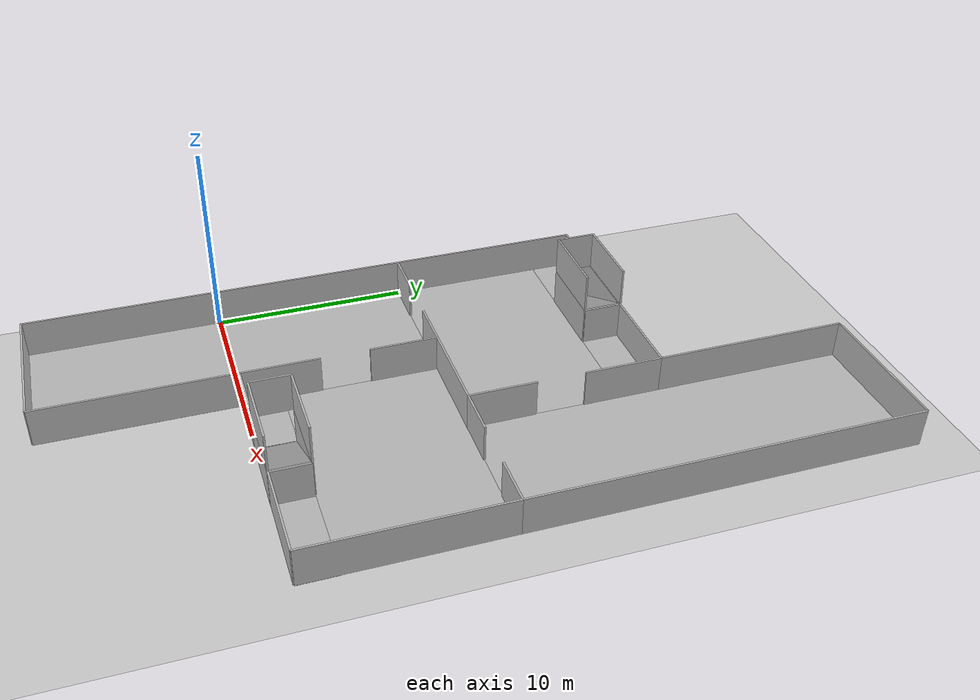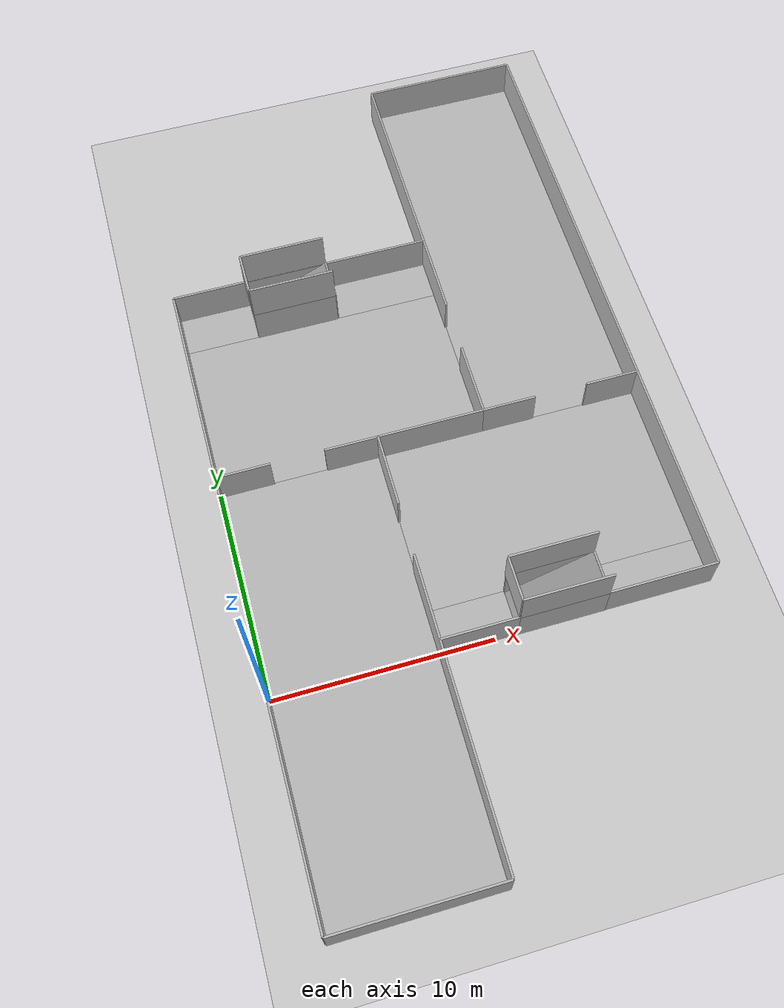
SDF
<sdf version="1.7">
 <world name="default">
  <light name="sun" type="directional">
   <pose>0 0 10 0 -0 0</pose>
   <diffuse>0.8 0.8 0.8 1</diffuse>
   <specular>0.2 0.2 0.2 1</specular>
   <attenuation>
    <range>1000</range>
    <constant>0.9</constant>
    <linear>0.01</linear>
    <quadratic>0.001</quadratic>
   </attenuation>
   <direction>-0.5 0.1 -0.9</direction>
   <spot><inner_angle>0</inner_angle><outer_angle>0</outer_angle><falloff>0</falloff></spot>
  </light>
  <model name="ground_plane">
   <static>1</static>
   <link name="link">
    <collision name="collision">
     <geometry><plane><normal>0 0 1</normal><size>100 100</size></plane></geometry>
     <surface><friction><ode><mu>100</mu><mu2>50</mu2></ode></friction></surface>
    </collision>
    <visual name="visual">
     <cast_shadows>0</cast_shadows>
     <geometry><plane><normal>0 0 1</normal><size>100 100</size></plane></geometry>
     <material>
      <script><uri>file://media/materials/scripts/gazebo.material</uri><name>Gazebo/Grey</name></script>
     </material>
    </visual>
   </link>
  </model>
  <gravity>0 0 -9.8</gravity>
  <magnetic_field>6e-06 2.3e-05 -4.2e-05</magnetic_field>
  <atmosphere type="adiabatic"/>
  <physics type="ode">
   <max_step_size>0.001</max_step_size>
   <real_time_factor>1</real_time_factor>
   <real_time_update_rate>1000</real_time_update_rate>
  </physics>
  <scene><ambient>0.4 0.4 0.4 1</ambient><background>0.7 0.7 0.7 1</background><shadows>1</shadows></scene>
  <spherical_coordinates>
   <surface_model>EARTH_WGS84</surface_model>
   <latitude_deg>0</latitude_deg>
   <longitude_deg>0</longitude_deg>
   <elevation>0</elevation>
   <heading_deg>0</heading_deg>
  </spherical_coordinates>
  <model name="multi_room_floor">
   <static>1</static>
   <link name="lr_room">
    <visual name="box_visual">
     <pose>3.75 0 0 0 -0 0</pose>
     <geometry>
      <mesh>
       <uri>model://gazebo_worlds_cdt/models/multi_room_floor/meshes/wall_box.dae</uri>
       <scale>7.5 20 0.1</scale>
      </mesh>
     </geometry>
    </visual>
    <collision name="box_collision">
     <pose>3.75 0 0 0 -0 0</pose>
     <geometry><box><size>7.5 20 0.1</size></box></geometry>
    </collision>
   </link>
   <link name="ul_room">
    <visual name="box_visual">
     <pose>16.25 20 0 0 -0 0</pose>
     <geometry>
      <mesh>
       <uri>model://gazebo_worlds_cdt/models/multi_room_floor/meshes/wall_box.dae</uri>
       <scale>7.5 20 0.1</scale>
      </mesh>
     </geometry>
    </visual>
    <collision name="box_collision">
     <pose>16.25 20 0 0 -0 0</pose>
     <geometry><box><size>7.5 20 0.1</size></box></geometry>
    </collision>
   </link>
   <link name="ur_room">
    <visual name="box_visual">
     <pose>13.75 6 0 0 -0 0</pose>
     <geometry>
      <mesh>
       <uri>model://gazebo_worlds_cdt/models/multi_room_floor/meshes/wall_box.dae</uri>
       <scale>12.5 8 0.1</scale>
      </mesh>
     </geometry>
    </visual>
    <collision name="box_collision">
     <pose>13.75 6 0 0 -0 0</pose>
     <geometry><box><size>12.5 8 0.1</size></box></geometry>
    </collision>
   </link>
   <link name="lr_slot_lower">
    <visual name="box_visual">
     <pose>9.25 1 0 0 -0 0</pose>
     <geometry>
      <mesh>
       <uri>model://gazebo_worlds_cdt/models/multi_room_floor/meshes/wall_box.dae</uri>
       <scale>3.55 2 0.1</scale>
      </mesh>
     </geometry>
    </visual>
    <collision name="box_collision">
     <pose>9.25 1 0 0 -0 0</pose>
     <geometry><box><size>3.55 2 0.1</size></box></geometry>
    </collision>
   </link>
   <link name="lr_slot_upper">
    <visual name="box_visual">
     <pose>17.5 1 0 0 -0 0</pose>
     <geometry>
      <mesh>
       <uri>model://gazebo_worlds_cdt/models/multi_room_floor/meshes/wall_box.dae</uri>
       <scale>5.05 2 0.1</scale>
      </mesh>
     </geometry>
    </visual>
    <collision name="box_collision">
     <pose>17.5 1 0 0 -0 0</pose>
     <geometry><box><size>5.05 2 0.1</size></box></geometry>
    </collision>
   </link>
   <link name="ll_room">
    <visual name="box_visual">
     <pose>6.25 14 0 0 -0 0</pose>
     <geometry>
      <mesh>
       <uri>model://gazebo_worlds_cdt/models/multi_room_floor/meshes/wall_box.dae</uri>
       <scale>12.5 8 0.1</scale>
      </mesh>
     </geometry>
    </visual>
    <collision name="box_collision">
     <pose>6.25 14 0 0 -0 0</pose>
     <geometry><box><size>12.25 8 0.1</size></box></geometry>
    </collision>
   </link>
   <link name="ur_slot_lower">
    <visual name="box_visual">
     <pose>1.75 19 0 0 -0 0</pose>
     <geometry>
      <mesh>
       <uri>model://gazebo_worlds_cdt/models/multi_room_floor/meshes/wall_box.dae</uri>
       <scale>3.55 2 0.1</scale>
      </mesh>
     </geometry>
    </visual>
    <collision name="box_collision">
     <pose>1.75 19 0 0 -0 0</pose>
     <geometry><box><size>3.55 2 0.1</size></box></geometry>
    </collision>
   </link>
   <link name="ur_slot_upper">
    <visual name="box_visual">
     <pose>10 19 0 0 -0 0</pose>
     <geometry>
      <mesh>
       <uri>model://gazebo_worlds_cdt/models/multi_room_floor/meshes/wall_box.dae</uri>
       <scale>5.05 2 0.1</scale>
      </mesh>
     </geometry>
    </visual>
    <collision name="box_collision">
     <pose>10 19 0 0 -0 0</pose>
     <geometry><box><size>5.05 2 0.1</size></box></geometry>
    </collision>
   </link>
  </model>
  <model name="multi_room">
   <static>1</static>
   <link name="right">
    <visual name="box_visual">
     <pose>3.75 -10 1 0 -0 0</pose>
     <geometry>
      <mesh>
       <uri>model://gazebo_worlds_cdt/models/multi_room/meshes/wall_box.dae</uri>
       <scale>7.5 0.1 2</scale>
      </mesh>
     </geometry>
    </visual>
    <collision name="box_collision">
     <pose>3.75 -10 1 0 -0 0</pose>
     <geometry><box><size>7.5 0.1 2</size></box></geometry>
    </collision>
   </link>
   <link name="left1">
    <visual name="box_visual">
     <pose>1.25 10 1 0 -0 0</pose>
     <geometry>
      <mesh>
       <uri>model://gazebo_worlds_cdt/models/multi_room/meshes/wall_box.dae</uri>
       <scale>2.5 0.1 2</scale>
      </mesh>
     </geometry>
    </visual>
    <collision name="box_collision">
     <pose>1.25 10 1 0 -0 0</pose>
     <geometry><box><size>2.5 0.1 2</size></box></geometry>
    </collision>
   </link>
   <link name="left2">
    <visual name="box_visual">
     <pose>6.25 10 1 0 -0 0</pose>
     <geometry>
      <mesh>
       <uri>model://gazebo_worlds_cdt/models/multi_room/meshes/wall_box.dae</uri>
       <scale>2.5 0.1 2</scale>
      </mesh>
     </geometry>
    </visual>
    <collision name="box_collision">
     <pose>6.25 10 1 0 -0 0</pose>
     <geometry><box><size>2.5 0.1 2</size></box></geometry>
    </collision>
   </link>
   <link name="bot1">
    <visual name="box_visual">
     <pose>0 0 1 0 -0 0</pose>
     <geometry>
      <mesh><uri>model://gazebo_worlds_cdt/models/multi_room/meshes/wall_box.dae</uri><scale>0.1 20 2</scale></mesh>
     </geometry>
    </visual>
    <collision name="box_collision">
     <pose>0 0 1 0 -0 0</pose>
     <geometry><box><size>0.1 20 2</size></box></geometry>
    </collision>
   </link>
   <link name="top1">
    <visual name="box_visual">
     <pose>7.5 8.25 1 0 -0 0</pose>
     <geometry>
      <mesh>
       <uri>model://gazebo_worlds_cdt/models/multi_room/meshes/wall_box.dae</uri>
       <scale>0.1 3.5 2</scale>
      </mesh>
     </geometry>
    </visual>
    <collision name="box_collision">
     <pose>7.5 8.25 1 0 -0 0</pose>
     <geometry><box><size>0.1 3.5 2</size></box></geometry>
    </collision>
   </link>
   <link name="top2">
    <visual name="box_visual">
     <pose>7.5 -3 1 0 -0 0</pose>
     <geometry>
      <mesh><uri>model://gazebo_worlds_cdt/models/multi_room/meshes/wall_box.dae</uri><scale>0.1 14 2</scale></mesh>
     </geometry>
    </visual>
    <collision name="box_collision">
     <pose>7.5 -3 1 0 -0 0</pose>
     <geometry><box><size>0.1 14 2</size></box></geometry>
    </collision>
   </link>
   <link name="bl_bottom1">
    <visual name="box_visual">
     <pose>0 15 1 0 -0 0</pose>
     <geometry>
      <mesh><uri>model://gazebo_worlds_cdt/models/multi_room/meshes/wall_box.dae</uri><scale>0.1 10 2</scale></mesh>
     </geometry>
    </visual>
    <collision name="box_collision">
     <pose>0 15 1 0 -0 0</pose>
     <geometry><box><size>0.1 10 2</size></box></geometry>
    </collision>
   </link>
   <link name="bl_left">
    <visual name="box_visual">
     <pose>6.25 20 1 0 -0 0</pose>
     <geometry>
      <mesh>
       <uri>model://gazebo_worlds_cdt/models/multi_room/meshes/wall_box.dae</uri>
       <scale>12.5 0.1 2</scale>
      </mesh>
     </geometry>
    </visual>
    <collision name="box_collision">
     <pose>6.25 20 1 0 -0 0</pose>
     <geometry><box><size>12.5 0.1 2</size></box></geometry>
    </collision>
   </link>
   <link name="bl_right">
    <visual name="box_visual">
     <pose>10 10 1 0 -0 0</pose>
     <geometry>
      <mesh><uri>model://gazebo_worlds_cdt/models/multi_room/meshes/wall_box.dae</uri><scale>5 0.1 2</scale></mesh>
     </geometry>
    </visual>
    <collision name="box_collision">
     <pose>10 10 1 0 -0 0</pose>
     <geometry><box><size>5 0.1 2</size></box></geometry>
    </collision>
   </link>
   <link name="bl_top1">
    <visual name="box_visual">
     <pose>12.5 11.75 1 0 -0 0</pose>
     <geometry>
      <mesh>
       <uri>model://gazebo_worlds_cdt/models/multi_room/meshes/wall_box.dae</uri>
       <scale>0.1 3.5 2</scale>
      </mesh>
     </geometry>
    </visual>
    <collision name="box_collision">
     <pose>12.5 11.75 1 0 -0 0</pose>
     <geometry><box><size>0.1 3.5 2</size></box></geometry>
    </collision>
   </link>
   <link name="bl_top2">
    <visual name="box_visual">
     <pose>12.5 18 1 0 -0 0</pose>
     <geometry>
      <mesh><uri>model://gazebo_worlds_cdt/models/multi_room/meshes/wall_box.dae</uri><scale>0.1 4 2</scale></mesh>
     </geometry>
    </visual>
    <collision name="box_collision">
     <pose>12.5 18 1 0 -0 0</pose>
     <geometry><box><size>0.1 4 2</size></box></geometry>
    </collision>
   </link>
   <link name="tr_top1">
    <visual name="box_visual">
     <pose>20 5 1 0 -0 0</pose>
     <geometry>
      <mesh><uri>model://gazebo_worlds_cdt/models/multi_room/meshes/wall_box.dae</uri><scale>0.1 10 2</scale></mesh>
     </geometry>
    </visual>
    <collision name="box_collision">
     <pose>20 5 1 0 -0 0</pose>
     <geometry><box><size>0.1 10 2</size></box></geometry>
    </collision>
   </link>
   <link name="tr_right">
    <visual name="box_visual">
     <pose>13.75 0 1 0 -0 0</pose>
     <geometry>
      <mesh>
       <uri>model://gazebo_worlds_cdt/models/multi_room/meshes/wall_box.dae</uri>
       <scale>12.5 0.1 2</scale>
      </mesh>
     </geometry>
    </visual>
    <collision name="box_collision">
     <pose>13.75 0 1 0 -0 0</pose>
     <geometry><box><size>12.5 0.1 2</size></box></geometry>
    </collision>
   </link>
   <link name="tr_left1">
    <visual name="box_visual">
     <pose>13.75 10 1 0 -0 0</pose>
     <geometry>
      <mesh>
       <uri>model://gazebo_worlds_cdt/models/multi_room/meshes/wall_box.dae</uri>
       <scale>2.5 0.1 2</scale>
      </mesh>
     </geometry>
    </visual>
    <collision name="box_collision">
     <pose>13.75 10 1 0 -0 0</pose>
     <geometry><box><size>2.5 0.1 2</size></box></geometry>
    </collision>
   </link>
   <link name="tr_left2">
    <visual name="box_visual">
     <pose>18.75 10 1 0 -0 0</pose>
     <geometry>
      <mesh>
       <uri>model://gazebo_worlds_cdt/models/multi_room/meshes/wall_box.dae</uri>
       <scale>2.5 0.1 2</scale>
      </mesh>
     </geometry>
    </visual>
    <collision name="box_collision">
     <pose>18.75 10 1 0 -0 0</pose>
     <geometry><box><size>2.5 0.1 2</size></box></geometry>
    </collision>
   </link>
   <link name="tl_top">
    <visual name="box_visual">
     <pose>20 20 1 0 -0 0</pose>
     <geometry>
      <mesh><uri>model://gazebo_worlds_cdt/models/multi_room/meshes/wall_box.dae</uri><scale>0.1 20 2</scale></mesh>
     </geometry>
    </visual>
    <collision name="box_collision">
     <pose>20 20 1 0 -0 0</pose>
     <geometry><box><size>0.1 20 2</size></box></geometry>
    </collision>
   </link>
   <link name="tl_left">
    <visual name="box_visual">
     <pose>16.25 30 1 0 -0 0</pose>
     <geometry>
      <mesh>
       <uri>model://gazebo_worlds_cdt/models/multi_room/meshes/wall_box.dae</uri>
       <scale>7.5 0.1 2</scale>
      </mesh>
     </geometry>
    </visual>
    <collision name="box_collision">
     <pose>16.25 30 1 0 -0 0</pose>
     <geometry><box><size>7.5 0.1 2</size></box></geometry>
    </collision>
   </link>
   <link name="tl_bottom">
    <visual name="box_visual">
     <pose>12.5 25 1 0 -0 0</pose>
     <geometry>
      <mesh><uri>model://gazebo_worlds_cdt/models/multi_room/meshes/wall_box.dae</uri><scale>0.1 10 2</scale></mesh>
     </geometry>
    </visual>
    <collision name="box_collision">
     <pose>12.5 25 1 0 -0 0</pose>
     <geometry><box><size>0.1 10 2</size></box></geometry>
    </collision>
   </link>
  </model>
  <model name="multi_room_ramp">
   <pose>13.0158 0.989533 -0.010377 0 -0 0</pose>
   <static>1</static>
   <link name="left">
    <visual name="box_visual">
     <pose>0 1 1 0 -0 0</pose>
     <geometry>
      <mesh>
       <uri>model://gazebo_worlds_cdt/models/multi_room_ramp/meshes/wall_box.dae</uri>
       <scale>4 0.1 2</scale>
      </mesh>
     </geometry>
    </visual>
    <collision name="box_collision">
     <pose>0 1 1 0 -0 0</pose>
     <geometry><box><size>4 0.1 2</size></box></geometry>
    </collision>
   </link>
   <link name="right">
    <visual name="box_visual">
     <pose>0 -1 1 0 -0 0</pose>
     <geometry>
      <mesh>
       <uri>model://gazebo_worlds_cdt/models/multi_room_ramp/meshes/wall_box.dae</uri>
       <scale>4 0.1 2</scale>
      </mesh>
     </geometry>
    </visual>
    <collision name="box_collision">
     <pose>0 -1 1 0 -0 0</pose>
     <geometry><box><size>4 0.1 2</size></box></geometry>
    </collision>
   </link>
   <link name="endblock">
    <visual name="box_visual">
     <pose>2 0 1 0 -0 0</pose>
     <geometry>
      <mesh>
       <uri>model://gazebo_worlds_cdt/models/multi_room_ramp/meshes/wall_box.dae</uri>
       <scale>0.1 2 2</scale>
      </mesh>
     </geometry>
    </visual>
    <collision name="box_collision">
     <pose>2 0 1 0 -0 0</pose>
     <geometry><box><size>0.1 2 2</size></box></geometry>
    </collision>
   </link>
   <link name="slope">
    <visual name="box_visual">
     <pose>0 0 1 0 1.1 0</pose>
     <geometry>
      <mesh>
       <uri>model://gazebo_worlds_cdt/models/multi_room_ramp/meshes/floor.dae</uri>
       <scale>0.1 2 4.4</scale>
      </mesh>
     </geometry>
    </visual>
    <collision name="box_collision">
     <pose>0 0 1 0 1.1 0</pose>
     <geometry><box><size>0.1 2 4.4</size></box></geometry>
    </collision>
   </link>
   <link name="endblock_upper_guard">
    <visual name="box_visual">
     <pose>-2 0 3 0 -0 0</pose>
     <geometry>
      <mesh>
       <uri>model://gazebo_worlds_cdt/models/multi_room_ramp/meshes/wall_box.dae</uri>
       <scale>0.1 2 2</scale>
      </mesh>
     </geometry>
    </visual>
    <collision name="box_collision">
     <pose>-2 0 3 0 -0 0</pose>
     <geometry><box><size>0.1 2 2</size></box></geometry>
    </collision>
   </link>
   <link name="left_upper_guard">
    <visual name="box_visual">
     <pose>0 1 3 0 -0 0</pose>
     <geometry>
      <mesh>
       <uri>model://gazebo_worlds_cdt/models/multi_room_ramp/meshes/wall_box.dae</uri>
       <scale>4 0.1 2</scale>
      </mesh>
     </geometry>
    </visual>
    <collision name="box_collision">
     <pose>0 1 3 0 -0 0</pose>
     <geometry><box><size>4 0.1 2</size></box></geometry>
    </collision>
   </link>
   <link name="right_upper_guard">
    <visual name="box_visual">
     <pose>0 -1 3 0 -0 0</pose>
     <geometry>
      <mesh>
       <uri>model://gazebo_worlds_cdt/models/multi_room_ramp/meshes/wall_box.dae</uri>
       <scale>4 0.1 2</scale>
      </mesh>
     </geometry>
    </visual>
    <collision name="box_collision">
     <pose>0 -1 3 0 -0 0</pose>
     <geometry><box><size>4 0.1 2</size></box></geometry>
    </collision>
   </link>
  </model>
  <model name="multi_room_ramp_0">
   <pose>5.52608 19.0181 0.010645 0 -0 0</pose>
   <static>1</static>
   <link name="left">
    <visual name="box_visual">
     <pose>0 1 1 0 -0 0</pose>
     <geometry>
      <mesh>
       <uri>model://gazebo_worlds_cdt/models/multi_room_ramp/meshes/wall_box.dae</uri>
       <scale>4 0.1 2</scale>
      </mesh>
     </geometry>
    </visual>
    <collision name="box_collision">
     <pose>0 1 1 0 -0 0</pose>
     <geometry><box><size>4 0.1 2</size></box></geometry>
    </collision>
   </link>
   <link name="right">
    <visual name="box_visual">
     <pose>0 -1 1 0 -0 0</pose>
     <geometry>
      <mesh>
       <uri>model://gazebo_worlds_cdt/models/multi_room_ramp/meshes/wall_box.dae</uri>
       <scale>4 0.1 2</scale>
      </mesh>
     </geometry>
    </visual>
    <collision name="box_collision">
     <pose>0 -1 1 0 -0 0</pose>
     <geometry><box><size>4 0.1 2</size></box></geometry>
    </collision>
   </link>
   <link name="endblock">
    <visual name="box_visual">
     <pose>2 0 1 0 -0 0</pose>
     <geometry>
      <mesh>
       <uri>model://gazebo_worlds_cdt/models/multi_room_ramp/meshes/wall_box.dae</uri>
       <scale>0.1 2 2</scale>
      </mesh>
     </geometry>
    </visual>
    <collision name="box_collision">
     <pose>2 0 1 0 -0 0</pose>
     <geometry><box><size>0.1 2 2</size></box></geometry>
    </collision>
   </link>
   <link name="slope">
    <visual name="box_visual">
     <pose>0 0 1 0 1.1 0</pose>
     <geometry>
      <mesh>
       <uri>model://gazebo_worlds_cdt/models/multi_room_ramp/meshes/floor.dae</uri>
       <scale>0.1 2 4.4</scale>
      </mesh>
     </geometry>
    </visual>
    <collision name="box_collision">
     <pose>0 0 1 0 1.1 0</pose>
     <geometry><box><size>0.1 2 4.4</size></box></geometry>
    </collision>
   </link>
   <link name="endblock_upper_guard">
    <visual name="box_visual">
     <pose>-2 0 3 0 -0 0</pose>
     <geometry>
      <mesh>
       <uri>model://gazebo_worlds_cdt/models/multi_room_ramp/meshes/wall_box.dae</uri>
       <scale>0.1 2 2</scale>
      </mesh>
     </geometry>
    </visual>
    <collision name="box_collision">
     <pose>-2 0 3 0 -0 0</pose>
     <geometry><box><size>0.1 2 2</size></box></geometry>
    </collision>
   </link>
   <link name="left_upper_guard">
    <visual name="box_visual">
     <pose>0 1 3 0 -0 0</pose>
     <geometry>
      <mesh>
       <uri>model://gazebo_worlds_cdt/models/multi_room_ramp/meshes/wall_box.dae</uri>
       <scale>4 0.1 2</scale>
      </mesh>
     </geometry>
    </visual>
    <collision name="box_collision">
     <pose>0 1 3 0 -0 0</pose>
     <geometry><box><size>4 0.1 2</size></box></geometry>
    </collision>
   </link>
   <link name="right_upper_guard">
    <visual name="box_visual">
     <pose>0 -1 3 0 -0 0</pose>
     <geometry>
      <mesh>
       <uri>model://gazebo_worlds_cdt/models/multi_room_ramp/meshes/wall_box.dae</uri>
       <scale>4 0.1 2</scale>
      </mesh>
     </geometry>
    </visual>
    <collision name="box_collision">
     <pose>0 -1 3 0 -0 0</pose>
     <geometry><box><size>4 0.1 2</size></box></geometry>
    </collision>
   </link>
  </model>
 </world>
</sdf>
